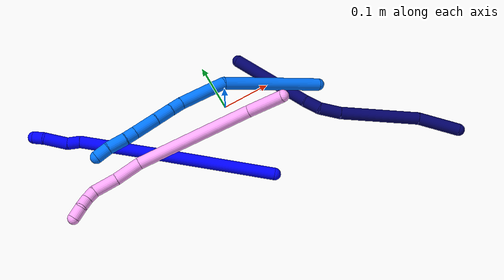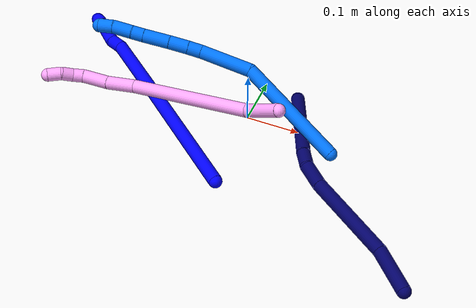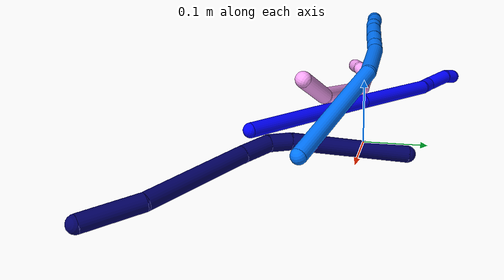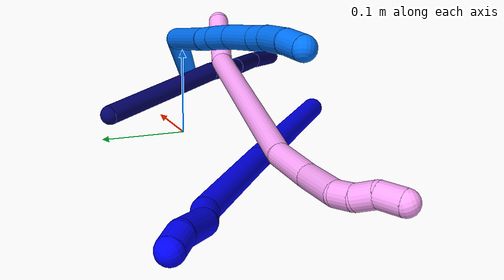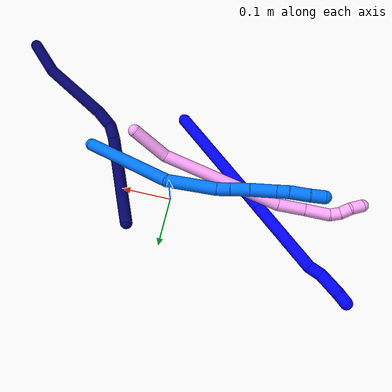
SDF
<sdf version="1.7">
 <world name="default">
  <model name="1">
   <static>0</static>
   <link name="1">
    <collision name="collision-cylinder-e_1_1_4">
     <pose>-0.05574 0.05105 0.09862 -0.477664 -0.465198 0.115226</pose>
     <geometry><cylinder><radius>0.0125</radius><length>0.248507</length></cylinder></geometry>
     <surface>
      <friction><ode><mu>1.16</mu><mu2>1.16</mu2><slip1>0</slip1><slip2>0</slip2></ode></friction>
      <contact><ode><kp>1e+06</kp><kd>1</kd><max_vel>0</max_vel><min_depth>0.001</min_depth></ode></contact>
     </surface>
    </collision>
    <visual name="visual-cylinder-e_1_1_4">
     <pose>-0.05574 0.05105 0.09862 -0.477664 -0.465198 0.115226</pose>
     <geometry><cylinder><radius>0.0125</radius><length>0.248507</length></cylinder></geometry>
     <material><ambient>0 0 1 1</ambient></material>
    </visual>
    <collision name="collision-cylinder-e_2_4_5">
     <pose>-0.145271 0.134293 0.258834 -0.481615 -0.452544 0.112948</pose>
     <geometry><cylinder><radius>0.0125</radius><length>0.15456</length></cylinder></geometry>
     <surface>
      <friction><ode><mu>1.16</mu><mu2>1.16</mu2><slip1>0</slip1><slip2>0</slip2></ode></friction>
      <contact><ode><kp>1e+06</kp><kd>1</kd><max_vel>0</max_vel><min_depth>0.001</min_depth></ode></contact>
     </surface>
    </collision>
    <visual name="visual-cylinder-e_2_4_5">
     <pose>-0.145271 0.134293 0.258834 -0.481615 -0.452544 0.112948</pose>
     <geometry><cylinder><radius>0.0125</radius><length>0.15456</length></cylinder></geometry>
     <material><ambient>0 0 1 1</ambient></material>
    </visual>
    <collision name="collision-cylinder-e_3_5_6">
     <pose>-0.18459 0.175189 0.32842 -0.827985 -0.437646 0.194806</pose>
     <geometry><cylinder><radius>0.0125</radius><length>0.026087</length></cylinder></geometry>
     <surface>
      <friction><ode><mu>1.16</mu><mu2>1.16</mu2><slip1>0</slip1><slip2>0</slip2></ode></friction>
      <contact><ode><kp>1e+06</kp><kd>1</kd><max_vel>0</max_vel><min_depth>0.001</min_depth></ode></contact>
     </surface>
    </collision>
    <visual name="visual-cylinder-e_3_5_6">
     <pose>-0.18459 0.175189 0.32842 -0.827985 -0.437646 0.194806</pose>
     <geometry><cylinder><radius>0.0125</radius><length>0.026087</length></cylinder></geometry>
     <material><ambient>0 0 1 1</ambient></material>
    </visual>
    <collision name="collision-cylinder-e_4_6_7">
     <pose>-0.204074 0.192638 0.353924 -0.463214 -0.619327 0.150631</pose>
     <geometry><cylinder><radius>0.0125</radius><length>0.048083</length></cylinder></geometry>
     <surface>
      <friction><ode><mu>1.16</mu><mu2>1.16</mu2><slip1>0</slip1><slip2>0</slip2></ode></friction>
      <contact><ode><kp>1e+06</kp><kd>1</kd><max_vel>0</max_vel><min_depth>0.001</min_depth></ode></contact>
     </surface>
    </collision>
    <visual name="visual-cylinder-e_4_6_7">
     <pose>-0.204074 0.192638 0.353924 -0.463214 -0.619327 0.150631</pose>
     <geometry><cylinder><radius>0.0125</radius><length>0.048083</length></cylinder></geometry>
     <material><ambient>0 0 1 1</ambient></material>
    </visual>
    <collision name="collision-cylinder-e_5_7_2">
     <pose>-0.221246 0.206657 0.380998 -0.503953 -0.286468 0.074225</pose>
     <geometry><cylinder><radius>0.0125</radius><length>0.022764</length></cylinder></geometry>
     <surface>
      <friction><ode><mu>1.16</mu><mu2>1.16</mu2><slip1>0</slip1><slip2>0</slip2></ode></friction>
      <contact><ode><kp>1e+06</kp><kd>1</kd><max_vel>0</max_vel><min_depth>0.001</min_depth></ode></contact>
     </surface>
    </collision>
    <visual name="visual-cylinder-e_5_7_2">
     <pose>-0.221246 0.206657 0.380998 -0.503953 -0.286468 0.074225</pose>
     <geometry><cylinder><radius>0.0125</radius><length>0.022764</length></cylinder></geometry>
     <material><ambient>0 0 1 1</ambient></material>
    </visual>
    <collision name="collision-sphere-2">
     <pose>-0.224462 0.21193 0.390558 0 -0 0</pose>
     <geometry><sphere><radius>0.0125</radius></sphere></geometry>
     <surface>
      <friction><ode><mu>1.16</mu><mu2>1.16</mu2><slip1>0</slip1><slip2>0</slip2></ode></friction>
      <contact><ode><kp>1e+06</kp><kd>1</kd><max_vel>0</max_vel><min_depth>0.001</min_depth></ode></contact>
     </surface>
    </collision>
    <visual name="visual-sphere-2">
     <pose>-0.224462 0.21193 0.390558 0 -0 0</pose>
     <geometry><sphere><radius>0.0125</radius></sphere></geometry>
     <material><ambient>0 0 1 1</ambient></material>
    </visual>
    <collision name="collision-sphere-7">
     <pose>-0.21803 0.201385 0.371437 0 -0 0</pose>
     <geometry><sphere><radius>0.0125</radius></sphere></geometry>
     <surface>
      <friction><ode><mu>1.16</mu><mu2>1.16</mu2><slip1>0</slip1><slip2>0</slip2></ode></friction>
      <contact><ode><kp>1e+06</kp><kd>1</kd><max_vel>0</max_vel><min_depth>0.001</min_depth></ode></contact>
     </surface>
    </collision>
    <visual name="visual-sphere-7">
     <pose>-0.21803 0.201385 0.371437 0 -0 0</pose>
     <geometry><sphere><radius>0.0125</radius></sphere></geometry>
     <material><ambient>0 0 1 1</ambient></material>
    </visual>
    <collision name="collision-sphere-6">
     <pose>-0.190118 0.183891 0.33641 0 -0 0</pose>
     <geometry><sphere><radius>0.0125</radius></sphere></geometry>
     <surface>
      <friction><ode><mu>1.16</mu><mu2>1.16</mu2><slip1>0</slip1><slip2>0</slip2></ode></friction>
      <contact><ode><kp>1e+06</kp><kd>1</kd><max_vel>0</max_vel><min_depth>0.001</min_depth></ode></contact>
     </surface>
    </collision>
    <visual name="visual-sphere-6">
     <pose>-0.190118 0.183891 0.33641 0 -0 0</pose>
     <geometry><sphere><radius>0.0125</radius></sphere></geometry>
     <material><ambient>0 0 1 1</ambient></material>
    </visual>
    <collision name="collision-sphere-5">
     <pose>-0.179062 0.166487 0.320429 0 -0 0</pose>
     <geometry><sphere><radius>0.0125</radius></sphere></geometry>
     <surface>
      <friction><ode><mu>1.16</mu><mu2>1.16</mu2><slip1>0</slip1><slip2>0</slip2></ode></friction>
      <contact><ode><kp>1e+06</kp><kd>1</kd><max_vel>0</max_vel><min_depth>0.001</min_depth></ode></contact>
     </surface>
    </collision>
    <visual name="visual-sphere-5">
     <pose>-0.179062 0.166487 0.320429 0 -0 0</pose>
     <geometry><sphere><radius>0.0125</radius></sphere></geometry>
     <material><ambient>0 0 1 1</ambient></material>
    </visual>
    <collision name="collision-sphere-1">
     <geometry><sphere><radius>0.0125</radius></sphere></geometry>
     <surface>
      <friction><ode><mu>1.16</mu><mu2>1.16</mu2><slip1>0</slip1><slip2>0</slip2></ode></friction>
      <contact><ode><kp>1e+06</kp><kd>1</kd><max_vel>0</max_vel><min_depth>0.001</min_depth></ode></contact>
     </surface>
    </collision>
    <visual name="visual-sphere-1">
     <geometry><sphere><radius>0.0125</radius></sphere></geometry>
     <material><ambient>0 0 1 1</ambient></material>
    </visual>
    <collision name="collision-sphere-4">
     <pose>-0.11148 0.1021 0.197239 0 -0 0</pose>
     <geometry><sphere><radius>0.0125</radius></sphere></geometry>
     <surface>
      <friction><ode><mu>1.16</mu><mu2>1.16</mu2><slip1>0</slip1><slip2>0</slip2></ode></friction>
      <contact><ode><kp>1e+06</kp><kd>1</kd><max_vel>0</max_vel><min_depth>0.001</min_depth></ode></contact>
     </surface>
    </collision>
    <visual name="visual-sphere-4">
     <pose>-0.11148 0.1021 0.197239 0 -0 0</pose>
     <geometry><sphere><radius>0.0125</radius></sphere></geometry>
     <material><ambient>0 0 1 1</ambient></material>
    </visual>
    <inertial>
     <pose>-0.111938 0.103959 0.197542 0 -0 0</pose>
     <mass>0.5</mass>
     <inertia>
      <ixx>0.001586</ixx>
      <ixy>0</ixy>
      <ixz>0</ixz>
      <iyy>0.001647</iyy>
      <iyz>0</iyz>
      <izz>8.7e-05</izz>
     </inertia>
    </inertial>
   </link>
   <pose>0.012641 -0.180085 0.012004 -2.63543 1.10962 -0.668973</pose>
  </model>
  <model name="4">
   <static>0</static>
   <link name="4">
    <collision name="collision-cylinder-e_1_1_4">
     <pose>-0.038042 0.011703 0.004093 -1.23431 -1.25575 0.951296</pose>
     <geometry><cylinder><radius>0.0125</radius><length>0.080023</length></cylinder></geometry>
     <surface>
      <friction><ode><mu>1.16</mu><mu2>1.16</mu2><slip1>0</slip1><slip2>0</slip2></ode></friction>
      <contact><ode><kp>1e+06</kp><kd>1</kd><max_vel>0</max_vel><min_depth>0.001</min_depth></ode></contact>
     </surface>
    </collision>
    <visual name="visual-cylinder-e_1_1_4">
     <pose>-0.038042 0.011703 0.004093 -1.23431 -1.25575 0.951296</pose>
     <geometry><cylinder><radius>0.0125</radius><length>0.080023</length></cylinder></geometry>
     <material><ambient>1 0.65098 0.996078 1</ambient></material>
    </visual>
    <collision name="collision-cylinder-e_2_4_5">
     <pose>-0.196132 0.02973 -0.013879 -2.86243 -1.38186 2.805</pose>
     <geometry><cylinder><radius>0.0125</radius><length>0.244445</length></cylinder></geometry>
     <surface>
      <friction><ode><mu>1.16</mu><mu2>1.16</mu2><slip1>0</slip1><slip2>0</slip2></ode></friction>
      <contact><ode><kp>1e+06</kp><kd>1</kd><max_vel>0</max_vel><min_depth>0.001</min_depth></ode></contact>
     </surface>
    </collision>
    <visual name="visual-cylinder-e_2_4_5">
     <pose>-0.196132 0.02973 -0.013879 -2.86243 -1.38186 2.805</pose>
     <geometry><cylinder><radius>0.0125</radius><length>0.244445</length></cylinder></geometry>
     <material><ambient>1 0.65098 0.996078 1</ambient></material>
    </visual>
    <collision name="collision-cylinder-e_3_5_6">
     <pose>-0.341814 0.037474 -0.04688 -3.0126 -1.16458 2.94604</pose>
     <geometry><cylinder><radius>0.0125</radius><length>0.05581</length></cylinder></geometry>
     <surface>
      <friction><ode><mu>1.16</mu><mu2>1.16</mu2><slip1>0</slip1><slip2>0</slip2></ode></friction>
      <contact><ode><kp>1e+06</kp><kd>1</kd><max_vel>0</max_vel><min_depth>0.001</min_depth></ode></contact>
     </surface>
    </collision>
    <visual name="visual-cylinder-e_3_5_6">
     <pose>-0.341814 0.037474 -0.04688 -3.0126 -1.16458 2.94604</pose>
     <geometry><cylinder><radius>0.0125</radius><length>0.05581</length></cylinder></geometry>
     <material><ambient>1 0.65098 0.996078 1</ambient></material>
    </visual>
    <collision name="collision-cylinder-e_4_6_7">
     <pose>-0.390676 0.037047 -0.067472 2.95278 -1.17039 -2.85772</pose>
     <geometry><cylinder><radius>0.0125</radius><length>0.050446</length></cylinder></geometry>
     <surface>
      <friction><ode><mu>1.16</mu><mu2>1.16</mu2><slip1>0</slip1><slip2>0</slip2></ode></friction>
      <contact><ode><kp>1e+06</kp><kd>1</kd><max_vel>0</max_vel><min_depth>0.001</min_depth></ode></contact>
     </surface>
    </collision>
    <visual name="visual-cylinder-e_4_6_7">
     <pose>-0.390676 0.037047 -0.067472 2.95278 -1.17039 -2.85772</pose>
     <geometry><cylinder><radius>0.0125</radius><length>0.050446</length></cylinder></geometry>
     <material><ambient>1 0.65098 0.996078 1</ambient></material>
    </visual>
    <collision name="collision-cylinder-e_5_7_8">
     <pose>-0.421708 0.03517 -0.084366 3.13721 -0.823065 -3.13155</pose>
     <geometry><cylinder><radius>0.0125</radius><length>0.021287</length></cylinder></geometry>
     <surface>
      <friction><ode><mu>1.16</mu><mu2>1.16</mu2><slip1>0</slip1><slip2>0</slip2></ode></friction>
      <contact><ode><kp>1e+06</kp><kd>1</kd><max_vel>0</max_vel><min_depth>0.001</min_depth></ode></contact>
     </surface>
    </collision>
    <visual name="visual-cylinder-e_5_7_8">
     <pose>-0.421708 0.03517 -0.084366 3.13721 -0.823065 -3.13155</pose>
     <geometry><cylinder><radius>0.0125</radius><length>0.021287</length></cylinder></geometry>
     <material><ambient>1 0.65098 0.996078 1</ambient></material>
    </visual>
    <collision name="collision-cylinder-e_6_8_9">
     <pose>-0.435061 0.033626 -0.101209 2.98543 -0.518519 -2.56786</pose>
     <geometry><cylinder><radius>0.0125</radius><length>0.02239</length></cylinder></geometry>
     <surface>
      <friction><ode><mu>1.16</mu><mu2>1.16</mu2><slip1>0</slip1><slip2>0</slip2></ode></friction>
      <contact><ode><kp>1e+06</kp><kd>1</kd><max_vel>0</max_vel><min_depth>0.001</min_depth></ode></contact>
     </surface>
    </collision>
    <visual name="visual-cylinder-e_6_8_9">
     <pose>-0.435061 0.033626 -0.101209 2.98543 -0.518519 -2.56786</pose>
     <geometry><cylinder><radius>0.0125</radius><length>0.02239</length></cylinder></geometry>
     <material><ambient>1 0.65098 0.996078 1</ambient></material>
    </visual>
    <collision name="collision-cylinder-e_7_9_2">
     <pose>-0.449307 0.034451 -0.119908 -2.89005 -0.747185 2.51757</pose>
     <geometry><cylinder><radius>0.0125</radius><length>0.025599</length></cylinder></geometry>
     <surface>
      <friction><ode><mu>1.16</mu><mu2>1.16</mu2><slip1>0</slip1><slip2>0</slip2></ode></friction>
      <contact><ode><kp>1e+06</kp><kd>1</kd><max_vel>0</max_vel><min_depth>0.001</min_depth></ode></contact>
     </surface>
    </collision>
    <visual name="visual-cylinder-e_7_9_2">
     <pose>-0.449307 0.034451 -0.119908 -2.89005 -0.747185 2.51757</pose>
     <geometry><cylinder><radius>0.0125</radius><length>0.025599</length></cylinder></geometry>
     <material><ambient>1 0.65098 0.996078 1</ambient></material>
    </visual>
    <collision name="collision-sphere-2">
     <pose>-0.458005 0.036788 -0.129002 0 -0 0</pose>
     <geometry><sphere><radius>0.0125</radius></sphere></geometry>
     <surface>
      <friction><ode><mu>1.16</mu><mu2>1.16</mu2><slip1>0</slip1><slip2>0</slip2></ode></friction>
      <contact><ode><kp>1e+06</kp><kd>1</kd><max_vel>0</max_vel><min_depth>0.001</min_depth></ode></contact>
     </surface>
    </collision>
    <visual name="visual-sphere-2">
     <pose>-0.458005 0.036788 -0.129002 0 -0 0</pose>
     <geometry><sphere><radius>0.0125</radius></sphere></geometry>
     <material><ambient>1 0.65098 0.996078 1</ambient></material>
    </visual>
    <collision name="collision-sphere-9">
     <pose>-0.440609 0.032114 -0.110814 0 -0 0</pose>
     <geometry><sphere><radius>0.0125</radius></sphere></geometry>
     <surface>
      <friction><ode><mu>1.16</mu><mu2>1.16</mu2><slip1>0</slip1><slip2>0</slip2></ode></friction>
      <contact><ode><kp>1e+06</kp><kd>1</kd><max_vel>0</max_vel><min_depth>0.001</min_depth></ode></contact>
     </surface>
    </collision>
    <visual name="visual-sphere-9">
     <pose>-0.440609 0.032114 -0.110814 0 -0 0</pose>
     <geometry><sphere><radius>0.0125</radius></sphere></geometry>
     <material><ambient>1 0.65098 0.996078 1</ambient></material>
    </visual>
    <collision name="collision-sphere-4">
     <pose>-0.076085 0.023405 0.008187 0 -0 0</pose>
     <geometry><sphere><radius>0.0125</radius></sphere></geometry>
     <surface>
      <friction><ode><mu>1.16</mu><mu2>1.16</mu2><slip1>0</slip1><slip2>0</slip2></ode></friction>
      <contact><ode><kp>1e+06</kp><kd>1</kd><max_vel>0</max_vel><min_depth>0.001</min_depth></ode></contact>
     </surface>
    </collision>
    <visual name="visual-sphere-4">
     <pose>-0.076085 0.023405 0.008187 0 -0 0</pose>
     <geometry><sphere><radius>0.0125</radius></sphere></geometry>
     <material><ambient>1 0.65098 0.996078 1</ambient></material>
    </visual>
    <collision name="collision-sphere-1">
     <geometry><sphere><radius>0.0125</radius></sphere></geometry>
     <surface>
      <friction><ode><mu>1.16</mu><mu2>1.16</mu2><slip1>0</slip1><slip2>0</slip2></ode></friction>
      <contact><ode><kp>1e+06</kp><kd>1</kd><max_vel>0</max_vel><min_depth>0.001</min_depth></ode></contact>
     </surface>
    </collision>
    <visual name="visual-sphere-1">
     <geometry><sphere><radius>0.0125</radius></sphere></geometry>
     <material><ambient>1 0.65098 0.996078 1</ambient></material>
    </visual>
    <collision name="collision-sphere-8">
     <pose>-0.429512 0.035138 -0.091603 0 -0 0</pose>
     <geometry><sphere><radius>0.0125</radius></sphere></geometry>
     <surface>
      <friction><ode><mu>1.16</mu><mu2>1.16</mu2><slip1>0</slip1><slip2>0</slip2></ode></friction>
      <contact><ode><kp>1e+06</kp><kd>1</kd><max_vel>0</max_vel><min_depth>0.001</min_depth></ode></contact>
     </surface>
    </collision>
    <visual name="visual-sphere-8">
     <pose>-0.429512 0.035138 -0.091603 0 -0 0</pose>
     <geometry><sphere><radius>0.0125</radius></sphere></geometry>
     <material><ambient>1 0.65098 0.996078 1</ambient></material>
    </visual>
    <collision name="collision-sphere-5">
     <pose>-0.31618 0.036056 -0.035946 0 -0 0</pose>
     <geometry><sphere><radius>0.0125</radius></sphere></geometry>
     <surface>
      <friction><ode><mu>1.16</mu><mu2>1.16</mu2><slip1>0</slip1><slip2>0</slip2></ode></friction>
      <contact><ode><kp>1e+06</kp><kd>1</kd><max_vel>0</max_vel><min_depth>0.001</min_depth></ode></contact>
     </surface>
    </collision>
    <visual name="visual-sphere-5">
     <pose>-0.31618 0.036056 -0.035946 0 -0 0</pose>
     <geometry><sphere><radius>0.0125</radius></sphere></geometry>
     <material><ambient>1 0.65098 0.996078 1</ambient></material>
    </visual>
    <collision name="collision-sphere-6">
     <pose>-0.367448 0.038892 -0.057815 0 -0 0</pose>
     <geometry><sphere><radius>0.0125</radius></sphere></geometry>
     <surface>
      <friction><ode><mu>1.16</mu><mu2>1.16</mu2><slip1>0</slip1><slip2>0</slip2></ode></friction>
      <contact><ode><kp>1e+06</kp><kd>1</kd><max_vel>0</max_vel><min_depth>0.001</min_depth></ode></contact>
     </surface>
    </collision>
    <visual name="visual-sphere-6">
     <pose>-0.367448 0.038892 -0.057815 0 -0 0</pose>
     <geometry><sphere><radius>0.0125</radius></sphere></geometry>
     <material><ambient>1 0.65098 0.996078 1</ambient></material>
    </visual>
    <collision name="collision-sphere-7">
     <pose>-0.413904 0.035202 -0.077129 0 -0 0</pose>
     <geometry><sphere><radius>0.0125</radius></sphere></geometry>
     <surface>
      <friction><ode><mu>1.16</mu><mu2>1.16</mu2><slip1>0</slip1><slip2>0</slip2></ode></friction>
      <contact><ode><kp>1e+06</kp><kd>1</kd><max_vel>0</max_vel><min_depth>0.001</min_depth></ode></contact>
     </surface>
    </collision>
    <visual name="visual-sphere-7">
     <pose>-0.413904 0.035202 -0.077129 0 -0 0</pose>
     <geometry><sphere><radius>0.0125</radius></sphere></geometry>
     <material><ambient>1 0.65098 0.996078 1</ambient></material>
    </visual>
    <inertial>
     <pose>-0.239984 0.029095 -0.032433 0 -0 0</pose>
     <mass>0.5</mass>
     <inertia>
      <ixx>-0.000172</ixx>
      <ixy>0</ixy>
      <ixz>0</ixz>
      <iyy>0.00139</iyy>
      <iyz>0</iyz>
      <izz>0.001192</izz>
     </inertia>
    </inertial>
   </link>
   <pose>0.087692 -0.078168 0.12106 -1.96924 -0.240291 -0.315661</pose>
  </model>
  <model name="7">
   <static>0</static>
   <link name="7">
    <collision name="collision-cylinder-e_1_1_4">
     <pose>-0.021157 0.013611 -0.034372 -2.76454 -0.519799 1.89685</pose>
     <geometry><cylinder><radius>0.0125</radius><length>0.085191</length></cylinder></geometry>
     <surface>
      <friction><ode><mu>1.16</mu><mu2>1.16</mu2><slip1>0</slip1><slip2>0</slip2></ode></friction>
      <contact><ode><kp>1e+06</kp><kd>1</kd><max_vel>0</max_vel><min_depth>0.001</min_depth></ode></contact>
     </surface>
    </collision>
    <visual name="visual-cylinder-e_1_1_4">
     <pose>-0.021157 0.013611 -0.034372 -2.76454 -0.519799 1.89685</pose>
     <geometry><cylinder><radius>0.0125</radius><length>0.085191</length></cylinder></geometry>
     <material><ambient>0.003922 0 0.403922 1</ambient></material>
    </visual>
    <collision name="collision-cylinder-e_2_4_5">
     <pose>-0.082435 0.034953 -0.138848 -3.03177 -0.517204 2.73185</pose>
     <geometry><cylinder><radius>0.0125</radius><length>0.162281</length></cylinder></geometry>
     <surface>
      <friction><ode><mu>1.16</mu><mu2>1.16</mu2><slip1>0</slip1><slip2>0</slip2></ode></friction>
      <contact><ode><kp>1e+06</kp><kd>1</kd><max_vel>0</max_vel><min_depth>0.001</min_depth></ode></contact>
     </surface>
    </collision>
    <visual name="visual-cylinder-e_2_4_5">
     <pose>-0.082435 0.034953 -0.138848 -3.03177 -0.517204 2.73185</pose>
     <geometry><cylinder><radius>0.0125</radius><length>0.162281</length></cylinder></geometry>
     <material><ambient>0.003922 0 0.403922 1</ambient></material>
    </visual>
    <collision name="collision-cylinder-e_3_5_6">
     <pose>-0.134592 0.047559 -0.226725 -2.87381 -0.578541 2.2916</pose>
     <geometry><cylinder><radius>0.0125</radius><length>0.044029</length></cylinder></geometry>
     <surface>
      <friction><ode><mu>1.16</mu><mu2>1.16</mu2><slip1>0</slip1><slip2>0</slip2></ode></friction>
      <contact><ode><kp>1e+06</kp><kd>1</kd><max_vel>0</max_vel><min_depth>0.001</min_depth></ode></contact>
     </surface>
    </collision>
    <visual name="visual-cylinder-e_3_5_6">
     <pose>-0.134592 0.047559 -0.226725 -2.87381 -0.578541 2.2916</pose>
     <geometry><cylinder><radius>0.0125</radius><length>0.044029</length></cylinder></geometry>
     <material><ambient>0.003922 0 0.403922 1</ambient></material>
    </visual>
    <collision name="collision-cylinder-e_4_6_7">
     <pose>-0.153215 0.061561 -0.256107 -2.47534 -0.419555 1.10319</pose>
     <geometry><cylinder><radius>0.0125</radius><length>0.032333</length></cylinder></geometry>
     <surface>
      <friction><ode><mu>1.16</mu><mu2>1.16</mu2><slip1>0</slip1><slip2>0</slip2></ode></friction>
      <contact><ode><kp>1e+06</kp><kd>1</kd><max_vel>0</max_vel><min_depth>0.001</min_depth></ode></contact>
     </surface>
    </collision>
    <visual name="visual-cylinder-e_4_6_7">
     <pose>-0.153215 0.061561 -0.256107 -2.47534 -0.419555 1.10319</pose>
     <geometry><cylinder><radius>0.0125</radius><length>0.032333</length></cylinder></geometry>
     <material><ambient>0.003922 0 0.403922 1</ambient></material>
    </visual>
    <collision name="collision-cylinder-e_5_7_2">
     <pose>-0.182123 0.131141 -0.327761 -2.35281 -0.256219 0.600308</pose>
     <geometry><cylinder><radius>0.0125</radius><length>0.176167</length></cylinder></geometry>
     <surface>
      <friction><ode><mu>1.16</mu><mu2>1.16</mu2><slip1>0</slip1><slip2>0</slip2></ode></friction>
      <contact><ode><kp>1e+06</kp><kd>1</kd><max_vel>0</max_vel><min_depth>0.001</min_depth></ode></contact>
     </surface>
    </collision>
    <visual name="visual-cylinder-e_5_7_2">
     <pose>-0.182123 0.131141 -0.327761 -2.35281 -0.256219 0.600308</pose>
     <geometry><cylinder><radius>0.0125</radius><length>0.176167</length></cylinder></geometry>
     <material><ambient>0.003922 0 0.403922 1</ambient></material>
    </visual>
    <collision name="collision-sphere-2">
     <pose>-0.204446 0.191595 -0.387808 0 -0 0</pose>
     <geometry><sphere><radius>0.0125</radius></sphere></geometry>
     <surface>
      <friction><ode><mu>1.16</mu><mu2>1.16</mu2><slip1>0</slip1><slip2>0</slip2></ode></friction>
      <contact><ode><kp>1e+06</kp><kd>1</kd><max_vel>0</max_vel><min_depth>0.001</min_depth></ode></contact>
     </surface>
    </collision>
    <visual name="visual-sphere-2">
     <pose>-0.204446 0.191595 -0.387808 0 -0 0</pose>
     <geometry><sphere><radius>0.0125</radius></sphere></geometry>
     <material><ambient>0.003922 0 0.403922 1</ambient></material>
    </visual>
    <collision name="collision-sphere-7">
     <pose>-0.159801 0.070686 -0.267714 0 -0 0</pose>
     <geometry><sphere><radius>0.0125</radius></sphere></geometry>
     <surface>
      <friction><ode><mu>1.16</mu><mu2>1.16</mu2><slip1>0</slip1><slip2>0</slip2></ode></friction>
      <contact><ode><kp>1e+06</kp><kd>1</kd><max_vel>0</max_vel><min_depth>0.001</min_depth></ode></contact>
     </surface>
    </collision>
    <visual name="visual-sphere-7">
     <pose>-0.159801 0.070686 -0.267714 0 -0 0</pose>
     <geometry><sphere><radius>0.0125</radius></sphere></geometry>
     <material><ambient>0.003922 0 0.403922 1</ambient></material>
    </visual>
    <collision name="collision-sphere-6">
     <pose>-0.14663 0.052436 -0.2445 0 -0 0</pose>
     <geometry><sphere><radius>0.0125</radius></sphere></geometry>
     <surface>
      <friction><ode><mu>1.16</mu><mu2>1.16</mu2><slip1>0</slip1><slip2>0</slip2></ode></friction>
      <contact><ode><kp>1e+06</kp><kd>1</kd><max_vel>0</max_vel><min_depth>0.001</min_depth></ode></contact>
     </surface>
    </collision>
    <visual name="visual-sphere-6">
     <pose>-0.14663 0.052436 -0.2445 0 -0 0</pose>
     <geometry><sphere><radius>0.0125</radius></sphere></geometry>
     <material><ambient>0.003922 0 0.403922 1</ambient></material>
    </visual>
    <collision name="collision-sphere-5">
     <pose>-0.122555 0.042682 -0.20895 0 -0 0</pose>
     <geometry><sphere><radius>0.0125</radius></sphere></geometry>
     <surface>
      <friction><ode><mu>1.16</mu><mu2>1.16</mu2><slip1>0</slip1><slip2>0</slip2></ode></friction>
      <contact><ode><kp>1e+06</kp><kd>1</kd><max_vel>0</max_vel><min_depth>0.001</min_depth></ode></contact>
     </surface>
    </collision>
    <visual name="visual-sphere-5">
     <pose>-0.122555 0.042682 -0.20895 0 -0 0</pose>
     <geometry><sphere><radius>0.0125</radius></sphere></geometry>
     <material><ambient>0.003922 0 0.403922 1</ambient></material>
    </visual>
    <collision name="collision-sphere-1">
     <geometry><sphere><radius>0.0125</radius></sphere></geometry>
     <surface>
      <friction><ode><mu>1.16</mu><mu2>1.16</mu2><slip1>0</slip1><slip2>0</slip2></ode></friction>
      <contact><ode><kp>1e+06</kp><kd>1</kd><max_vel>0</max_vel><min_depth>0.001</min_depth></ode></contact>
     </surface>
    </collision>
    <visual name="visual-sphere-1">
     <geometry><sphere><radius>0.0125</radius></sphere></geometry>
     <material><ambient>0.003922 0 0.403922 1</ambient></material>
    </visual>
    <collision name="collision-sphere-4">
     <pose>-0.042315 0.027223 -0.068745 0 -0 0</pose>
     <geometry><sphere><radius>0.0125</radius></sphere></geometry>
     <surface>
      <friction><ode><mu>1.16</mu><mu2>1.16</mu2><slip1>0</slip1><slip2>0</slip2></ode></friction>
      <contact><ode><kp>1e+06</kp><kd>1</kd><max_vel>0</max_vel><min_depth>0.001</min_depth></ode></contact>
     </surface>
    </collision>
    <visual name="visual-sphere-4">
     <pose>-0.042315 0.027223 -0.068745 0 -0 0</pose>
     <geometry><sphere><radius>0.0125</radius></sphere></geometry>
     <material><ambient>0.003922 0 0.403922 1</ambient></material>
    </visual>
    <inertial>
     <pose>-0.116288 0.068038 -0.202928 0 -0 0</pose>
     <mass>0.5</mass>
     <inertia>
      <ixx>0.000478</ixx>
      <ixy>0</ixy>
      <ixz>0</ixz>
      <iyy>0.000595</iyy>
      <iyz>0</iyz>
      <izz>-7.4e-05</izz>
     </inertia>
    </inertial>
   </link>
   <pose>0.386811 -0.287232 0.016356 -0.582232 1.11622 -0.965313</pose>
  </model>
  <model name="14">
   <static>0</static>
   <link name="14">
    <collision name="collision-cylinder-e_1_1_4">
     <pose>-0.101518 0.020846 0.008774 -1.17239 -1.35159 0.978449</pose>
     <geometry><cylinder><radius>0.0125</radius><length>0.208014</length></cylinder></geometry>
     <surface>
      <friction><ode><mu>1.16</mu><mu2>1.16</mu2><slip1>0</slip1><slip2>0</slip2></ode></friction>
      <contact><ode><kp>1e+06</kp><kd>1</kd><max_vel>0</max_vel><min_depth>0.001</min_depth></ode></contact>
     </surface>
    </collision>
    <visual name="visual-cylinder-e_1_1_4">
     <pose>-0.101518 0.020846 0.008774 -1.17239 -1.35159 0.978449</pose>
     <geometry><cylinder><radius>0.0125</radius><length>0.208014</length></cylinder></geometry>
     <material><ambient>0 0.462745 1 1</ambient></material>
    </visual>
    <collision name="collision-cylinder-e_2_4_5">
     <pose>-0.241262 0.067998 0.030619 -1.10968 -0.915605 0.592763</pose>
     <geometry><cylinder><radius>0.0125</radius><length>0.096417</length></cylinder></geometry>
     <surface>
      <friction><ode><mu>1.16</mu><mu2>1.16</mu2><slip1>0</slip1><slip2>0</slip2></ode></friction>
      <contact><ode><kp>1e+06</kp><kd>1</kd><max_vel>0</max_vel><min_depth>0.001</min_depth></ode></contact>
     </surface>
    </collision>
    <visual name="visual-cylinder-e_2_4_5">
     <pose>-0.241262 0.067998 0.030619 -1.10968 -0.915605 0.592763</pose>
     <geometry><cylinder><radius>0.0125</radius><length>0.096417</length></cylinder></geometry>
     <material><ambient>0 0.462745 1 1</ambient></material>
    </visual>
    <collision name="collision-cylinder-e_3_5_6">
     <pose>-0.288553 0.102413 0.046151 -1.27603 -0.819071 0.622768</pose>
     <geometry><cylinder><radius>0.0125</radius><length>0.024819</length></cylinder></geometry>
     <surface>
      <friction><ode><mu>1.16</mu><mu2>1.16</mu2><slip1>0</slip1><slip2>0</slip2></ode></friction>
      <contact><ode><kp>1e+06</kp><kd>1</kd><max_vel>0</max_vel><min_depth>0.001</min_depth></ode></contact>
     </surface>
    </collision>
    <visual name="visual-cylinder-e_3_5_6">
     <pose>-0.288553 0.102413 0.046151 -1.27603 -0.819071 0.622768</pose>
     <geometry><cylinder><radius>0.0125</radius><length>0.024819</length></cylinder></geometry>
     <material><ambient>0 0.462745 1 1</ambient></material>
    </visual>
    <collision name="collision-cylinder-e_4_6_7">
     <pose>-0.310448 0.122254 0.052561 -1.24619 -0.803292 0.592463</pose>
     <geometry><cylinder><radius>0.0125</radius><length>0.035655</length></cylinder></geometry>
     <surface>
      <friction><ode><mu>1.16</mu><mu2>1.16</mu2><slip1>0</slip1><slip2>0</slip2></ode></friction>
      <contact><ode><kp>1e+06</kp><kd>1</kd><max_vel>0</max_vel><min_depth>0.001</min_depth></ode></contact>
     </surface>
    </collision>
    <visual name="visual-cylinder-e_4_6_7">
     <pose>-0.310448 0.122254 0.052561 -1.24619 -0.803292 0.592463</pose>
     <geometry><cylinder><radius>0.0125</radius><length>0.035655</length></cylinder></geometry>
     <material><ambient>0 0.462745 1 1</ambient></material>
    </visual>
    <collision name="collision-cylinder-e_5_7_8">
     <pose>-0.340533 0.14948 0.063217 -1.16218 -0.796259 0.538989</pose>
     <geometry><cylinder><radius>0.0125</radius><length>0.048284</length></cylinder></geometry>
     <surface>
      <friction><ode><mu>1.16</mu><mu2>1.16</mu2><slip1>0</slip1><slip2>0</slip2></ode></friction>
      <contact><ode><kp>1e+06</kp><kd>1</kd><max_vel>0</max_vel><min_depth>0.001</min_depth></ode></contact>
     </surface>
    </collision>
    <visual name="visual-cylinder-e_5_7_8">
     <pose>-0.340533 0.14948 0.063217 -1.16218 -0.796259 0.538989</pose>
     <geometry><cylinder><radius>0.0125</radius><length>0.048284</length></cylinder></geometry>
     <material><ambient>0 0.462745 1 1</ambient></material>
    </visual>
    <collision name="collision-cylinder-e_6_8_9">
     <pose>-0.365917 0.172161 0.072663 -1.20691 -0.813122 0.576935</pose>
     <geometry><cylinder><radius>0.0125</radius><length>0.022378</length></cylinder></geometry>
     <surface>
      <friction><ode><mu>1.16</mu><mu2>1.16</mu2><slip1>0</slip1><slip2>0</slip2></ode></friction>
      <contact><ode><kp>1e+06</kp><kd>1</kd><max_vel>0</max_vel><min_depth>0.001</min_depth></ode></contact>
     </surface>
    </collision>
    <visual name="visual-cylinder-e_6_8_9">
     <pose>-0.365917 0.172161 0.072663 -1.20691 -0.813122 0.576935</pose>
     <geometry><cylinder><radius>0.0125</radius><length>0.022378</length></cylinder></geometry>
     <material><ambient>0 0.462745 1 1</ambient></material>
    </visual>
    <collision name="collision-cylinder-e_7_9_10">
     <pose>-0.387819 0.189907 0.081632 -1.03761 -0.843421 0.501528</pose>
     <geometry><cylinder><radius>0.0125</radius><length>0.036883</length></cylinder></geometry>
     <surface>
      <friction><ode><mu>1.16</mu><mu2>1.16</mu2><slip1>0</slip1><slip2>0</slip2></ode></friction>
      <contact><ode><kp>1e+06</kp><kd>1</kd><max_vel>0</max_vel><min_depth>0.001</min_depth></ode></contact>
     </surface>
    </collision>
    <visual name="visual-cylinder-e_7_9_10">
     <pose>-0.387819 0.189907 0.081632 -1.03761 -0.843421 0.501528</pose>
     <geometry><cylinder><radius>0.0125</radius><length>0.036883</length></cylinder></geometry>
     <material><ambient>0 0.462745 1 1</ambient></material>
    </visual>
    <collision name="collision-cylinder-e_8_10_2">
     <pose>-0.41021 0.209378 0.093872 -0.977664 -0.675825 0.369537</pose>
     <geometry><cylinder><radius>0.0125</radius><length>0.027549</length></cylinder></geometry>
     <surface>
      <friction><ode><mu>1.16</mu><mu2>1.16</mu2><slip1>0</slip1><slip2>0</slip2></ode></friction>
      <contact><ode><kp>1e+06</kp><kd>1</kd><max_vel>0</max_vel><min_depth>0.001</min_depth></ode></contact>
     </surface>
    </collision>
    <visual name="visual-cylinder-e_8_10_2">
     <pose>-0.41021 0.209378 0.093872 -0.977664 -0.675825 0.369537</pose>
     <geometry><cylinder><radius>0.0125</radius><length>0.027549</length></cylinder></geometry>
     <material><ambient>0 0.462745 1 1</ambient></material>
    </visual>
    <collision name="collision-sphere-2">
     <pose>-0.418827 0.21829 0.099879 0 -0 0</pose>
     <geometry><sphere><radius>0.0125</radius></sphere></geometry>
     <surface>
      <friction><ode><mu>1.16</mu><mu2>1.16</mu2><slip1>0</slip1><slip2>0</slip2></ode></friction>
      <contact><ode><kp>1e+06</kp><kd>1</kd><max_vel>0</max_vel><min_depth>0.001</min_depth></ode></contact>
     </surface>
    </collision>
    <visual name="visual-sphere-2">
     <pose>-0.418827 0.21829 0.099879 0 -0 0</pose>
     <geometry><sphere><radius>0.0125</radius></sphere></geometry>
     <material><ambient>0 0.462745 1 1</ambient></material>
    </visual>
    <collision name="collision-sphere-10">
     <pose>-0.401594 0.200467 0.087865 0 -0 0</pose>
     <geometry><sphere><radius>0.0125</radius></sphere></geometry>
     <surface>
      <friction><ode><mu>1.16</mu><mu2>1.16</mu2><slip1>0</slip1><slip2>0</slip2></ode></friction>
      <contact><ode><kp>1e+06</kp><kd>1</kd><max_vel>0</max_vel><min_depth>0.001</min_depth></ode></contact>
     </surface>
    </collision>
    <visual name="visual-sphere-10">
     <pose>-0.401594 0.200467 0.087865 0 -0 0</pose>
     <geometry><sphere><radius>0.0125</radius></sphere></geometry>
     <material><ambient>0 0.462745 1 1</ambient></material>
    </visual>
    <collision name="collision-sphere-9">
     <pose>-0.374045 0.179347 0.0754 0 -0 0</pose>
     <geometry><sphere><radius>0.0125</radius></sphere></geometry>
     <surface>
      <friction><ode><mu>1.16</mu><mu2>1.16</mu2><slip1>0</slip1><slip2>0</slip2></ode></friction>
      <contact><ode><kp>1e+06</kp><kd>1</kd><max_vel>0</max_vel><min_depth>0.001</min_depth></ode></contact>
     </surface>
    </collision>
    <visual name="visual-sphere-9">
     <pose>-0.374045 0.179347 0.0754 0 -0 0</pose>
     <geometry><sphere><radius>0.0125</radius></sphere></geometry>
     <material><ambient>0 0.462745 1 1</ambient></material>
    </visual>
    <collision name="collision-sphere-4">
     <pose>-0.203036 0.041692 0.017549 0 -0 0</pose>
     <geometry><sphere><radius>0.0125</radius></sphere></geometry>
     <surface>
      <friction><ode><mu>1.16</mu><mu2>1.16</mu2><slip1>0</slip1><slip2>0</slip2></ode></friction>
      <contact><ode><kp>1e+06</kp><kd>1</kd><max_vel>0</max_vel><min_depth>0.001</min_depth></ode></contact>
     </surface>
    </collision>
    <visual name="visual-sphere-4">
     <pose>-0.203036 0.041692 0.017549 0 -0 0</pose>
     <geometry><sphere><radius>0.0125</radius></sphere></geometry>
     <material><ambient>0 0.462745 1 1</ambient></material>
    </visual>
    <collision name="collision-sphere-1">
     <geometry><sphere><radius>0.0125</radius></sphere></geometry>
     <surface>
      <friction><ode><mu>1.16</mu><mu2>1.16</mu2><slip1>0</slip1><slip2>0</slip2></ode></friction>
      <contact><ode><kp>1e+06</kp><kd>1</kd><max_vel>0</max_vel><min_depth>0.001</min_depth></ode></contact>
     </surface>
    </collision>
    <visual name="visual-sphere-1">
     <geometry><sphere><radius>0.0125</radius></sphere></geometry>
     <material><ambient>0 0.462745 1 1</ambient></material>
    </visual>
    <collision name="collision-sphere-8">
     <pose>-0.357788 0.164975 0.069926 0 -0 0</pose>
     <geometry><sphere><radius>0.0125</radius></sphere></geometry>
     <surface>
      <friction><ode><mu>1.16</mu><mu2>1.16</mu2><slip1>0</slip1><slip2>0</slip2></ode></friction>
      <contact><ode><kp>1e+06</kp><kd>1</kd><max_vel>0</max_vel><min_depth>0.001</min_depth></ode></contact>
     </surface>
    </collision>
    <visual name="visual-sphere-8">
     <pose>-0.357788 0.164975 0.069926 0 -0 0</pose>
     <geometry><sphere><radius>0.0125</radius></sphere></geometry>
     <material><ambient>0 0.462745 1 1</ambient></material>
    </visual>
    <collision name="collision-sphere-5">
     <pose>-0.279488 0.094304 0.043689 0 -0 0</pose>
     <geometry><sphere><radius>0.0125</radius></sphere></geometry>
     <surface>
      <friction><ode><mu>1.16</mu><mu2>1.16</mu2><slip1>0</slip1><slip2>0</slip2></ode></friction>
      <contact><ode><kp>1e+06</kp><kd>1</kd><max_vel>0</max_vel><min_depth>0.001</min_depth></ode></contact>
     </surface>
    </collision>
    <visual name="visual-sphere-5">
     <pose>-0.279488 0.094304 0.043689 0 -0 0</pose>
     <geometry><sphere><radius>0.0125</radius></sphere></geometry>
     <material><ambient>0 0.462745 1 1</ambient></material>
    </visual>
    <collision name="collision-sphere-6">
     <pose>-0.297618 0.110522 0.048613 0 -0 0</pose>
     <geometry><sphere><radius>0.0125</radius></sphere></geometry>
     <surface>
      <friction><ode><mu>1.16</mu><mu2>1.16</mu2><slip1>0</slip1><slip2>0</slip2></ode></friction>
      <contact><ode><kp>1e+06</kp><kd>1</kd><max_vel>0</max_vel><min_depth>0.001</min_depth></ode></contact>
     </surface>
    </collision>
    <visual name="visual-sphere-6">
     <pose>-0.297618 0.110522 0.048613 0 -0 0</pose>
     <geometry><sphere><radius>0.0125</radius></sphere></geometry>
     <material><ambient>0 0.462745 1 1</ambient></material>
    </visual>
    <collision name="collision-sphere-7">
     <pose>-0.323278 0.133986 0.056508 0 -0 0</pose>
     <geometry><sphere><radius>0.0125</radius></sphere></geometry>
     <surface>
      <friction><ode><mu>1.16</mu><mu2>1.16</mu2><slip1>0</slip1><slip2>0</slip2></ode></friction>
      <contact><ode><kp>1e+06</kp><kd>1</kd><max_vel>0</max_vel><min_depth>0.001</min_depth></ode></contact>
     </surface>
    </collision>
    <visual name="visual-sphere-7">
     <pose>-0.323278 0.133986 0.056508 0 -0 0</pose>
     <geometry><sphere><radius>0.0125</radius></sphere></geometry>
     <material><ambient>0 0.462745 1 1</ambient></material>
    </visual>
    <inertial>
     <pose>-0.225691 0.083272 0.036145 0 -0 0</pose>
     <mass>0.5</mass>
     <inertia>
      <ixx>0.00029</ixx>
      <ixy>0</ixy>
      <ixz>0</ixz>
      <iyy>0.001001</iyy>
      <iyz>0</iyz>
      <izz>0.000618</izz>
     </inertia>
    </inertial>
   </link>
   <pose>0.182838 -0.065402 0.040116 3.07746 0.44432 -0.597029</pose>
  </model>
 </world>
</sdf>
